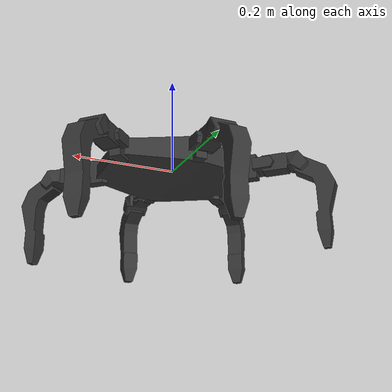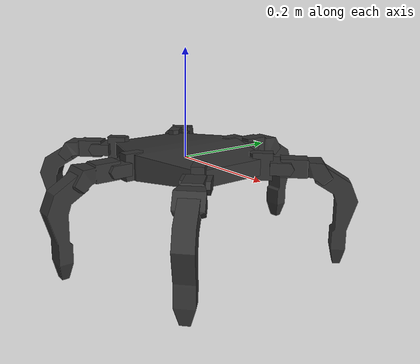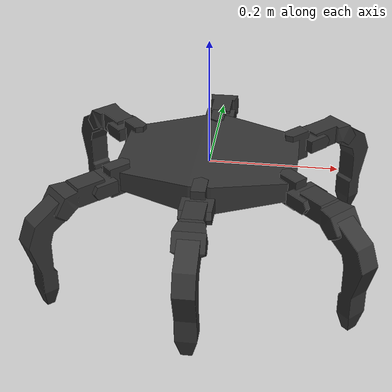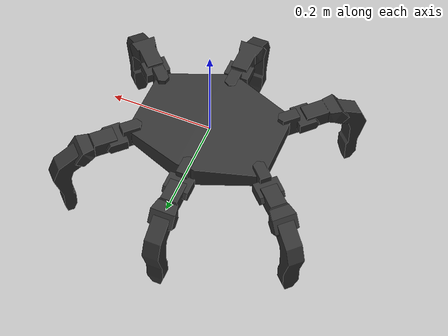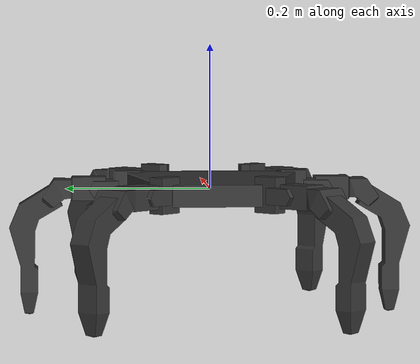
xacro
<?xml version="1.0" ?>
<robot name="PhantomX"  xmlns:xacro="http://www.ros.org/wiki/xacro">

    <xacro:include filename="$(find phantomx_description)/urdf/phantomx_urdf.xacro" />

    <link name="base_link"/>

    <xacro:phantomx parent="base_link">
        <origin xyz="0 0 0" rpy="0 0 0" />
    </xacro:phantomx>

    <gazebo>
        <plugin filename="libgazebo_ros_control.so" name="gazebo_ros_control">
            <robotNamespace>/phantomx</robotNamespace>
            <legacyModeNS>true</legacyModeNS>
        </plugin>
    </gazebo>

</robot>

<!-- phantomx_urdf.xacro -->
<robot xmlns:xacro="http://www.ros.org/wiki/xacro">

    <xacro:property name="connect_offset" value="0.02633"/>
    <xacro:property name="thigh_offset_y" value="-0.0645"/>
    <xacro:property name="thigh_offset_z" value="-0.0145"/>

    <xacro:macro name="phantomx" params="parent *origin">

        <joint name="j_phantomx_attachment" type="fixed">
            <parent link="${parent}"/>
            <child link="MP_BODY"/>
            <insert_block name="origin"/>
        </joint>

        <link name="MP_BODY">
            <inertial>
                <origin xyz="0 0 0"/>
                <mass value="0.97559947"/>
                <inertia ixx="3.1081800" ixy="-0.25460189" ixz="2.0318174" iyy="6.3787776" iyz="0.16417863"
                         izz="5.3316425"/>
            </inertial>
            <visual>
                <origin xyz="0 0 0" rpy="0 0 0"/>
                <geometry>
                    <mesh filename="package://phantomx_description/meshes/body.STL" scale="1 1 1"/>
                </geometry>
                <material name="Grey">
                    <color rgba="0.20 0.20 0.20 1.0"/>
                </material>
            </visual>
            <collision>
                <origin xyz="0 0 0" rpy="0 0 0"/>
                <geometry>
                    <mesh filename="package://phantomx_description/meshes/body_coll.STL" scale="1 1 1"/>
                </geometry>

            </collision>
        </link>

        <gazebo reference="MP_BODY">
            <material>Gazebo/Grey</material>
        </gazebo>

        <xacro:leg_l xyz="0.1248 -0.06164  0.001116" rpy="0 4.7123 0.7853981633974483" suffix="rf"/>
        <xacro:leg_l xyz="0 -0.1034  0.001116" rpy="0 4.7123 0" suffix="rm"/>
        <xacro:leg_l xyz="-0.1248 -0.06164  0.001116" rpy="0 4.7123 -0.7853981633974483" suffix="rr"/>

        <xacro:leg_l xyz="0.1248 0.06164  0.001116" rpy="0 4.7123 2.356194490192345" suffix="lf"/>
        <xacro:leg_l xyz="0 0.1034  0.001116" rpy="0 4.7123 3.14159" suffix="lm"/>
        <xacro:leg_l xyz="-0.1248 0.06164  0.001116" rpy="0 4.7123 3.9269908169872414" suffix="lr"/>

    </xacro:macro>

    <xacro:macro name="leg_l" params="xyz rpy suffix">

        <link name="c1_${suffix}">
            <inertial>
                <origin xyz="0 -${connect_offset} 0" rpy="0 0 0"/>
                <mass value="0.324357719"/>
                <inertia ixx="0.0051411124" ixy="-0.00057530255" ixz="-0.000024729049" iyy="0.0081915737"
                         iyz="-0.000019223094" izz="0.0011379812"/>
            </inertial>
            <visual>
                <origin xyz="0 -0.0252 0" rpy="0 0 0"/>
                <geometry>
                    <!--box size="0.045 0.022 0.0325" /-->
                    <mesh filename="package://phantomx_description/meshes/connect.STL" scale="1 1 1"/>
                </geometry>
                <material name="Grey">
                    <color rgba="0.20 0.20 0.20 1.0"/>
                </material>
            </visual>
            <collision>
                <origin xyz="0 -${connect_offset} 0" rpy="0 0 0"/>
                <geometry>
                    <mesh filename="package://phantomx_description/meshes/connect_coll.STL" scale="1 1 1"/>
                </geometry>
            </collision>
        </link>

        <gazebo reference="c1_${suffix}">
            <dampingFactor>0.0005</dampingFactor>
        </gazebo>

        <link name="c2_${suffix}">
            <inertial>
                <origin xyz="0 -${connect_offset} 0" rpy="0 0 0"/>
                <mass value="0.324357719"/>
                <inertia ixx="0.0051411124" ixy="-0.00057530255" ixz="-0.000024729049" iyy="0.0081915737"
                         iyz="-0.000019223094" izz="0.0011379812"/>
            </inertial>
            <visual>
                <origin xyz="0 -0.0252 0" rpy="0 0 0"/>
                <geometry>
                    <!--box size="0.045 0.022 0.0325" /-->
                    <mesh filename="package://phantomx_description/meshes/connect.STL" scale="1 1 1"/>
                </geometry>
                <material name="Grey">
                    <color rgba="0.20 0.20 0.20 1.0"/>
                </material>
            </visual>
            <collision>
                <origin xyz="0 -${connect_offset} 0" rpy="0 0 0"/>
                <geometry>
                    <mesh filename="package://phantomx_description/meshes/connect_coll.STL" scale="1 1 1"/>
                </geometry>
            </collision>
        </link>

        <gazebo reference="c2_${suffix}">
            <dampingFactor>0.0005</dampingFactor>
        </gazebo>

        <link name="thigh_${suffix}">
            <inertial>
                <origin xyz="0 0 0" rpy="0 0 0"/>
                <mass value="0.324357719"/>
                <inertia ixx="0.0051411124" ixy="-0.00057530255" ixz="-0.000024729049" iyy="0.0081915737"
                         iyz="-0.000019223094" izz="0.0011379812"/>
            </inertial>
            <visual>
                <origin xyz="0 0 0" rpy="0 0 0"/>
                <geometry>
                    <mesh filename="package://phantomx_description/meshes/thigh_l.STL" scale="1 1 1"/>
                </geometry>
                <material name="Grey">
                    <color rgba="0.20 0.20 0.20 1.0"/>
                </material>
            </visual>
            <collision>
                <origin xyz="0 0 0" rpy="0 0 0"/>
                <geometry>
                    <mesh filename="package://phantomx_description/meshes/thigh_l_coll.STL" scale="1 1 1"/>
                </geometry>
            </collision>
        </link>

        <gazebo reference="thigh_${suffix}">
            <dampingFactor>0.0005</dampingFactor>
        </gazebo>

        <link name="tibia_${suffix}">
            <inertial>
                <origin xyz="0 0 0" rpy="0 0 0"/>
                <mass value="0.324357719"/>
                <inertia ixx="0.0051411124" ixy="-0.00057530255" ixz="-0.000024729049" iyy="0.0081915737"
                         iyz="-0.000019223094" izz="0.0011379812"/>
            </inertial>
            <visual>
                <origin xyz="0 0 0" rpy="0 0 0"/>
                <geometry>
                    <mesh filename="package://phantomx_description/meshes/tibia_l.STL" scale="1 1 1"/>
                </geometry>
                <material name="Grey">
                    <color rgba="0.20 0.20 0.20 1.0"/>
                </material>
            </visual>
            <collision>
                <origin xyz="0 0 0" rpy="0 0 0"/>
                <geometry>
                    <mesh filename="package://phantomx_description/meshes/tibia_l_coll.STL" scale="1 1 1"/>
                </geometry>
            </collision>
        </link>

        <gazebo reference="tibia_${suffix}">
            <mu1>50.0</mu1>
            <mu2>50.0</mu2>
            <fdir1>0.000000 0.000000 0.000000</fdir1>
            <kp>500000.0</kp>
            <kd>10.0</kd>
            <maxVel>0.00</maxVel>
            <minDepth>0.001</minDepth>
            <dampingFactor>0.0005</dampingFactor>
            <selfCollide>1</selfCollide>
        </gazebo>

        <joint name="j_c1_${suffix}" type="revolute">
            <parent link="MP_BODY"/>
            <child link="c1_${suffix}"/>
            <origin xyz="${xyz}" rpy="${rpy}"/>
            <axis xyz="1 0 0"/>
            <limit effort="2.8" velocity="5.6548668" lower="-2.6179939" upper="2.6179939"/>
        </joint>

        <joint name="j_c2_${suffix}" type="fixed">
            <parent link="c1_${suffix}"/>
            <child link="c2_${suffix}"/>
            <origin xyz="0 -0.054 0" rpy="0 1.5704 3.14159"/>
        </joint>

        <joint name="j_thigh_${suffix}" type="revolute">
            <parent link="c2_${suffix}"/>
            <child link="thigh_${suffix}"/>
            <origin xyz="0 0 0" rpy=" 0 3.14159 3.14159"/>
            <axis xyz="1 0 0"/>
            <limit effort="2.8" velocity="5.6548668" lower="-2.6179939" upper="2.6179939"/>
        </joint>

        <joint name="j_tibia_${suffix}" type="revolute">
            <parent link="thigh_${suffix}"/>
            <child link="tibia_${suffix}"/>
            <origin xyz="0 ${thigh_offset_y} ${thigh_offset_z}" rpy="-1.5707 0 3.14159"/>
            <axis xyz="1 0 0"/>
            <limit effort="2.8" velocity="5.6548668" lower="-2.6179939" upper="2.6179939"/>
        </joint>

        <transmission name="t_c1_${suffix}">
            <type>transmission_interface/SimpleTransmission</type>
            <joint name="j_c1_${suffix}">
                <hardwareInterface>hardware_interface/EffortJointInterface</hardwareInterface>
            </joint>
            <actuator name="m_c1_${suffix}">
                <hardwareInterface>hardware_interface/EffortJointInterface</hardwareInterface>
                <mechanicalReduction>1</mechanicalReduction>
            </actuator>
        </transmission>

        <transmission name="t_thigh_${suffix}">
            <type>transmission_interface/SimpleTransmission</type>
            <joint name="j_thigh_${suffix}">
                <hardwareInterface>hardware_interface/EffortJointInterface</hardwareInterface>
            </joint>
            <actuator name="m_thigh_${suffix}">
                <hardwareInterface>hardware_interface/EffortJointInterface</hardwareInterface>
                <mechanicalReduction>1</mechanicalReduction>
            </actuator>
        </transmission>

        <transmission name="t_tibia_${suffix}">
            <type>transmission_interface/SimpleTransmission</type>
            <joint name="j_tibia_${suffix}">
                <hardwareInterface>hardware_interface/EffortJointInterface</hardwareInterface>
            </joint>
            <actuator name="m_tibia_${suffix}">
                <hardwareInterface>hardware_interface/EffortJointInterface</hardwareInterface>
                <mechanicalReduction>1</mechanicalReduction>
            </actuator>
        </transmission>

        <gazebo reference="c1_${suffix}">
            <material>Gazebo/Grey</material>
        </gazebo>

        <gazebo reference="c2_${suffix}">
            <material>Gazebo/Grey</material>
        </gazebo>

        <gazebo reference="thigh_${suffix}">
            <material>Gazebo/Grey</material>
        </gazebo>

        <gazebo reference="tibia_${suffix}">
            <material>Gazebo/Grey</material>
        </gazebo>

    </xacro:macro>

</robot>
